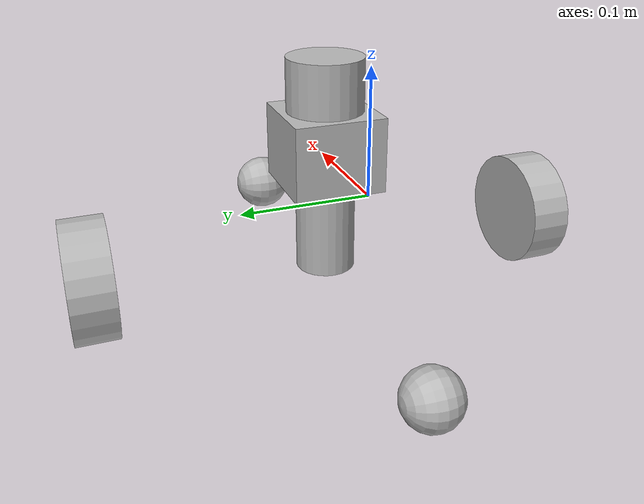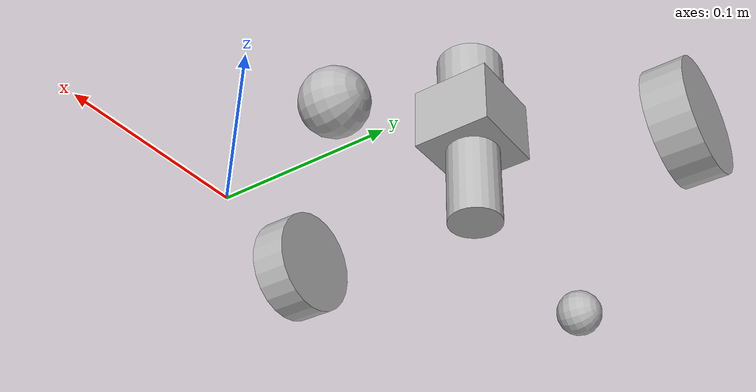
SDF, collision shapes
<?xml version="1.0" ?>
<sdf version="1.5">
 <model name='create2'>
      <link name='base'>
        <inertial>
          <pose frame=''>0.001453 -0.000453 0.029787 0 -0 0</pose>
          <inertia>
            <ixx>0.05864</ixx>
            <ixy>0.000124</ixy>
            <ixz>0.000615</ixz>
            <iyy>0.058786</iyy>
            <iyz>1.4e-05</iyz>
            <izz>1.53244</izz>
          </inertia>
          <mass>2.234</mass>
        </inertial>
        <sensor name='left_cliff_sensor' type='ray'>
          <pose frame=''>0.07 0.14 0.027 0 1.57079 0</pose>
          <ray>
            <scan>
              <horizontal>
                <samples>1</samples>
                <resolution>1</resolution>
                <min_angle>0</min_angle>
                <max_angle>0</max_angle>
              </horizontal>
              <vertical>
                <samples>1</samples>
                <min_angle>0</min_angle>
                <max_angle>0</max_angle>
              </vertical>
            </scan>
            <range>
              <min>0.01</min>
              <max>0.04</max>
              <resolution>0.1</resolution>
            </range>
          </ray>
        </sensor>
        <sensor name='leftfront_cliff_sensor' type='ray'>
          <pose frame=''>0.15 0.04 0.027 0 1.57079 0</pose>
          <ray>
            <scan>
              <horizontal>
                <samples>1</samples>
                <resolution>1</resolution>
                <min_angle>0</min_angle>
                <max_angle>0</max_angle>
              </horizontal>
              <vertical>
                <samples>1</samples>
                <min_angle>0</min_angle>
                <max_angle>0</max_angle>
              </vertical>
            </scan>
            <range>
              <min>0.01</min>
              <max>0.04</max>
              <resolution>0.1</resolution>
            </range>
          </ray>
        </sensor>
        <sensor name='right_cliff_sensor' type='ray'>
          <pose frame=''>0.07 -0.14 0.027 0 1.57079 0</pose>
          <ray>
            <scan>
              <horizontal>
                <samples>1</samples>
                <resolution>1</resolution>
                <min_angle>0</min_angle>
                <max_angle>0</max_angle>
              </horizontal>
              <vertical>
                <samples>1</samples>
                <min_angle>0</min_angle>
                <max_angle>0</max_angle>
              </vertical>
            </scan>
            <range>
              <min>0.01</min>
              <max>0.04</max>
              <resolution>0.1</resolution>
            </range>
          </ray>
        </sensor>
        <sensor name='rightfront_cliff_sensor' type='ray'>
          <pose frame=''>0.15 -0.04 0.027 0 1.57079 0</pose>
          <ray>
            <scan>
              <horizontal>
                <samples>1</samples>
                <resolution>1</resolution>
                <min_angle>0</min_angle>
                <max_angle>0</max_angle>
              </horizontal>
              <vertical>
                <samples>1</samples>
                <min_angle>0</min_angle>
                <max_angle>0</max_angle>
              </vertical>
            </scan>
            <range>
              <min>0.01</min>
              <max>0.04</max>
              <resolution>0.1</resolution>
            </range>
          </ray>
        </sensor>
        <sensor name='wall_sensor' type='ray'>
          <pose frame=''>0.09 -0.12 0.059 0 0 -1</pose>
          <ray>
            <scan>
              <horizontal>
                <samples>1</samples>
                <resolution>1</resolution>
                <min_angle>0</min_angle>
                <max_angle>0</max_angle>
              </horizontal>
              <vertical>
                <samples>1</samples>
                <min_angle>0</min_angle>
                <max_angle>0</max_angle>
              </vertical>
            </scan>
            <range>
              <min>0.016</min>
              <max>0.04</max>
              <resolution>0.1</resolution>
            </range>
          </ray>
        </sensor>
        <self_collide>0</self_collide>
        <enable_wind>0</enable_wind>
        <kinematic>0</kinematic>
        <pose frame=''>0 0 0 0 -0 0</pose>
        <visual name='base_visual'>
          <pose frame=''>0 0 0.0478 0 -0 0</pose>
          <geometry>
            <mesh>
              <uri>model://create/meshes/create_body.dae</uri>
            </mesh>
          </geometry>
          <material>
            <shader type='pixel'/>
            <emissive>0 0 0 1</emissive>
          </material>
          <transparency>0</transparency>
          <cast_shadows>1</cast_shadows>
        </visual>
        <visual name='front_wheel_visual'>
          <pose frame=''>0.13 0 0.017 4.8e-05 1.5707 1.57075</pose>
          <geometry>
            <sphere>
              <radius>0.009</radius>
            </sphere>
          </geometry>
          <material>
            <shader type='pixel'/>
            <emissive>0 0 0 1</emissive>
          </material>
          <transparency>0</transparency>
          <cast_shadows>1</cast_shadows>
        </visual>
        <visual name='rear_wheel_visual'>
          <pose frame=''>-0.13 0 0.017 4.8e-05 1.5707 1.57075</pose>
          <geometry>
            <sphere>
              <radius>0.0075</radius>
            </sphere>
          </geometry>
          <material>
            <shader type='pixel'/>
            <emissive>0 0 0 1</emissive>
          </material>
          <transparency>0</transparency>
          <cast_shadows>1</cast_shadows>
        </visual>
        <collision name='base_collision'>
          <laser_retro>0</laser_retro>
          <max_contacts>10</max_contacts>
          <pose frame=''>0 0 0.0478 0 -0 0</pose>
          <geometry>
            <cylinder>
              <radius>0.016495</radius>
              <length>0.061163</length>
            </cylinder>
          </geometry>
          <surface>
            <friction>
              <ode>
                <mu>1</mu>
                <mu2>1</mu2>
                <fdir1>0 0 0</fdir1>
                <slip1>0</slip1>
                <slip2>0</slip2>
              </ode>
              <torsional>
                <coefficient>1</coefficient>
                <patch_radius>0</patch_radius>
                <surface_radius>0</surface_radius>
                <use_patch_radius>1</use_patch_radius>
                <ode>
                  <slip>0</slip>
                </ode>
              </torsional>
            </friction>
            <bounce>
              <restitution_coefficient>0</restitution_coefficient>
              <threshold>1e+06</threshold>
            </bounce>
            <contact>
              <collide_without_contact>0</collide_without_contact>
              <collide_without_contact_bitmask>1</collide_without_contact_bitmask>
              <collide_bitmask>1</collide_bitmask>
              <ode>
                <soft_cfm>0</soft_cfm>
                <soft_erp>0.2</soft_erp>
                <kp>1e+13</kp>
                <kd>1</kd>
                <max_vel>0.01</max_vel>
                <min_depth>0</min_depth>
              </ode>
              <bullet>
                <split_impulse>1</split_impulse>
                <split_impulse_penetration_threshold>-0.01</split_impulse_penetration_threshold>
                <soft_cfm>0</soft_cfm>
                <soft_erp>0.2</soft_erp>
                <kp>1e+13</kp>
                <kd>1</kd>
              </bullet>
            </contact>
          </surface>
        </collision>
        <collision name='front_wheel_collision'>
          <laser_retro>0</laser_retro>
          <max_contacts>10</max_contacts>
          <pose frame=''>0.13 0 0.017 -0 1.5707 1.5707</pose>
          <geometry>
            <sphere>
              <radius>0.018</radius>
            </sphere>
          </geometry>
          <surface>
            <friction>
              <ode>
                <mu>0</mu>
                <mu2>0</mu2>
                <fdir1>0 0 0</fdir1>
                <slip1>0</slip1>
                <slip2>0</slip2>
              </ode>
              <torsional>
                <coefficient>1</coefficient>
                <patch_radius>0</patch_radius>
                <surface_radius>0</surface_radius>
                <use_patch_radius>1</use_patch_radius>
                <ode>
                  <slip>0</slip>
                </ode>
              </torsional>
            </friction>
            <bounce>
              <restitution_coefficient>0</restitution_coefficient>
              <threshold>1e+06</threshold>
            </bounce>
            <contact>
              <collide_without_contact>0</collide_without_contact>
              <collide_without_contact_bitmask>1</collide_without_contact_bitmask>
              <collide_bitmask>1</collide_bitmask>
              <ode>
                <soft_cfm>0</soft_cfm>
                <soft_erp>0.2</soft_erp>
                <kp>1e+13</kp>
                <kd>1</kd>
                <max_vel>0.01</max_vel>
                <min_depth>0</min_depth>
              </ode>
              <bullet>
                <split_impulse>1</split_impulse>
                <split_impulse_penetration_threshold>-0.01</split_impulse_penetration_threshold>
                <soft_cfm>0</soft_cfm>
                <soft_erp>0.2</soft_erp>
                <kp>1e+13</kp>
                <kd>1</kd>
              </bullet>
            </contact>
          </surface>
        </collision>
        <collision name='rear_wheel_collision'>
          <laser_retro>0</laser_retro>
          <max_contacts>10</max_contacts>
          <pose frame=''>-0.13 0 0.017 -0 1.5707 1.5707</pose>
          <geometry>
            <sphere>
              <radius>0.015</radius>
            </sphere>
          </geometry>
          <surface>
            <friction>
              <ode>
                <mu>0</mu>
                <mu2>0</mu2>
                <fdir1>0 0 0</fdir1>
                <slip1>0</slip1>
                <slip2>0</slip2>
              </ode>
              <torsional>
                <coefficient>1</coefficient>
                <patch_radius>0</patch_radius>
                <surface_radius>0</surface_radius>
                <use_patch_radius>1</use_patch_radius>
                <ode>
                  <slip>0</slip>
                </ode>
              </torsional>
            </friction>
            <bounce>
              <restitution_coefficient>0</restitution_coefficient>
              <threshold>1e+06</threshold>
            </bounce>
            <contact>
              <collide_without_contact>0</collide_without_contact>
              <collide_without_contact_bitmask>1</collide_without_contact_bitmask>
              <collide_bitmask>1</collide_bitmask>
              <ode>
                <soft_cfm>0</soft_cfm>
                <soft_erp>0.2</soft_erp>
                <kp>1e+13</kp>
                <kd>1</kd>
                <max_vel>0.01</max_vel>
                <min_depth>0</min_depth>
              </ode>
              <bullet>
                <split_impulse>1</split_impulse>
                <split_impulse_penetration_threshold>-0.01</split_impulse_penetration_threshold>
                <soft_cfm>0</soft_cfm>
                <soft_erp>0.2</soft_erp>
                <kp>1e+13</kp>
                <kd>1</kd>
              </bullet>
            </contact>
          </surface>
        </collision>
      </link>
      <link name='left_wheel'>
        <pose frame=''>0 0.13 0.032 0 -0 0</pose>
        <inertial>
          <inertia>
            <ixx>0.001</ixx>
            <ixy>0</ixy>
            <ixz>0</ixz>
            <iyy>0.001</iyy>
            <iyz>0</iyz>
            <izz>0.001</izz>
          </inertia>
          <mass>0.01</mass>
          <pose frame=''>0 0 0 0 -0 0</pose>
        </inertial>
        <self_collide>0</self_collide>
        <enable_wind>0</enable_wind>
        <kinematic>0</kinematic>
        <visual name='visual'>
          <pose frame=''>0 0 0 4.8e-05 1.5707 1.57075</pose>
          <geometry>
            <cylinder>
              <radius>0.033</radius>
              <length>0.023</length>
            </cylinder>
          </geometry>
          <material>
            <shader type='pixel'/>
          </material>
          <transparency>0</transparency>
          <cast_shadows>1</cast_shadows>
        </visual>
        <collision name='collision'>
          <laser_retro>0</laser_retro>
          <max_contacts>10</max_contacts>
          <pose frame=''>0 0 0 -0 1.5707 1.5707</pose>
          <geometry>
            <cylinder>
              <radius>0.033</radius>
              <length>0.023</length>
            </cylinder>
          </geometry>
          <surface>
            <friction>
              <ode>
                <mu>10</mu>
                <mu2>10</mu2>
                <fdir1>0 0 0</fdir1>
                <slip1>0</slip1>
                <slip2>0</slip2>
              </ode>
              <torsional>
                <coefficient>1</coefficient>
                <patch_radius>0</patch_radius>
                <surface_radius>0</surface_radius>
                <use_patch_radius>1</use_patch_radius>
                <ode>
                  <slip>0</slip>
                </ode>
              </torsional>
            </friction>
            <bounce>
              <restitution_coefficient>0</restitution_coefficient>
              <threshold>1e+06</threshold>
            </bounce>
            <contact>
              <collide_without_contact>0</collide_without_contact>
              <collide_without_contact_bitmask>1</collide_without_contact_bitmask>
              <collide_bitmask>1</collide_bitmask>
              <ode>
                <soft_cfm>0</soft_cfm>
                <soft_erp>0.2</soft_erp>
                <kp>1e+13</kp>
                <kd>1</kd>
                <max_vel>0.01</max_vel>
                <min_depth>0</min_depth>
              </ode>
              <bullet>
                <split_impulse>1</split_impulse>
                <split_impulse_penetration_threshold>-0.01</split_impulse_penetration_threshold>
                <soft_cfm>0</soft_cfm>
                <soft_erp>0.2</soft_erp>
                <kp>1e+13</kp>
                <kd>1</kd>
              </bullet>
            </contact>
          </surface>
        </collision>
      </link>
      <link name='right_wheel'>
        <pose frame=''>-0 -0.13 0.032 0 -0 0</pose>
        <inertial>
          <inertia>
            <ixx>0.001</ixx>
            <ixy>0</ixy>
            <ixz>0</ixz>
            <iyy>0.001</iyy>
            <iyz>0</iyz>
            <izz>0.001</izz>
          </inertia>
          <mass>0.01</mass>
          <pose frame=''>0 0 0 0 -0 0</pose>
        </inertial>
        <self_collide>0</self_collide>
        <enable_wind>0</enable_wind>
        <kinematic>0</kinematic>
        <visual name='visual'>
          <pose frame=''>0 0 0 4.8e-05 1.5707 1.57075</pose>
          <geometry>
            <cylinder>
              <radius>0.033</radius>
              <length>0.023</length>
            </cylinder>
          </geometry>
          <material>
            <shader type='pixel'/>
          </material>
          <transparency>0</transparency>
          <cast_shadows>1</cast_shadows>
        </visual>
        <collision name='collision'>
          <laser_retro>0</laser_retro>
          <max_contacts>10</max_contacts>
          <pose frame=''>0 0 0 -0 1.5707 1.5707</pose>
          <geometry>
            <cylinder>
              <radius>0.033</radius>
              <length>0.023</length>
            </cylinder>
          </geometry>
          <surface>
            <friction>
              <ode>
                <mu>10</mu>
                <mu2>10</mu2>
                <fdir1>0 0 0</fdir1>
                <slip1>0</slip1>
                <slip2>0</slip2>
              </ode>
              <torsional>
                <coefficient>1</coefficient>
                <patch_radius>0</patch_radius>
                <surface_radius>0</surface_radius>
                <use_patch_radius>1</use_patch_radius>
                <ode>
                  <slip>0</slip>
                </ode>
              </torsional>
            </friction>
            <bounce>
              <restitution_coefficient>0</restitution_coefficient>
              <threshold>1e+06</threshold>
            </bounce>
            <contact>
              <collide_without_contact>0</collide_without_contact>
              <collide_without_contact_bitmask>1</collide_without_contact_bitmask>
              <collide_bitmask>1</collide_bitmask>
              <ode>
                <soft_cfm>0</soft_cfm>
                <soft_erp>0.2</soft_erp>
                <kp>1e+13</kp>
                <kd>1</kd>
                <max_vel>0.01</max_vel>
                <min_depth>0</min_depth>
              </ode>
              <bullet>
                <split_impulse>1</split_impulse>
                <split_impulse_penetration_threshold>-0.01</split_impulse_penetration_threshold>
                <soft_cfm>0</soft_cfm>
                <soft_erp>0.2</soft_erp>
                <kp>1e+13</kp>
                <kd>1</kd>
              </bullet>
            </contact>
          </surface>
        </collision>
      </link>
      <link name='hokuyo'>
        <pose frame=''>3.1e-05 -5e-06 0.102553 0 -0 0</pose>
        <inertial>
          <mass>0.1</mass>
          <pose frame=''>0 0 0 0 -0 0</pose>
          <inertia>
            <ixx>1</ixx>
            <ixy>0</ixy>
            <ixz>0</ixz>
            <iyy>1</iyy>
            <iyz>0</iyz>
            <izz>1</izz>
          </inertia>
        </inertial>
        <visual name='visual'>
          <geometry>
            <mesh>
              <uri>model://hokuyo/meshes/hokuyo.dae</uri>
            </mesh>
          </geometry>
        </visual>
        <collision name='collision-base'>
          <pose frame=''>0 0 -0.0145 0 -0 0</pose>
          <geometry>
            <box>
              <size>0.05 0.05 0.041</size>
            </box>
          </geometry>
          <max_contacts>10</max_contacts>
          <surface>
            <contact>
              <ode/>
            </contact>
            <bounce/>
            <friction>
              <torsional>
                <ode/>
              </torsional>
              <ode/>
            </friction>
          </surface>
        </collision>
        <collision name='collision-top'>
          <pose frame=''>0 0 0.0205 0 -0 0</pose>
          <geometry>
            <cylinder>
              <radius>0.021</radius>
              <length>0.029</length>
            </cylinder>
          </geometry>
          <max_contacts>10</max_contacts>
          <surface>
            <contact>
              <ode/>
            </contact>
            <bounce/>
            <friction>
              <torsional>
                <ode/>
              </torsional>
              <ode/>
            </friction>
          </surface>
        </collision>
        <sensor name='laser' type='ray'>
          <pose frame=''>0.01 0 0.0175 0 -0 0</pose>
          <ray>
            <scan>
              <horizontal>
                <samples>640</samples>
                <resolution>1</resolution>
                <min_angle>-2.26889</min_angle>
                <max_angle>2.2689</max_angle>
              </horizontal>
              <vertical>
                <samples>1</samples>
                <min_angle>0</min_angle>
                <max_angle>0</max_angle>
              </vertical>
            </scan>
            <range>
              <min>0.08</min>
              <max>10</max>
              <resolution>0.01</resolution>
            </range>
          </ray>
          <plugin name='laser' filename='libRayPlugin.so'/>
          <always_on>1</always_on>
          <update_rate>30</update_rate>
          <visualize>1</visualize>
        </sensor>
        <self_collide>0</self_collide>
        <enable_wind>0</enable_wind>
        <kinematic>0</kinematic>
      </link>
      <joint name='base_hokuyo_joint' type='fixed'>
        <parent>base</parent>
        <child>hokuyo</child>
        <pose frame=''>0 0 0 0 -0 0</pose>
        <physics>
          <ode>
            <limit>
              <cfm>0</cfm>
              <erp>0.2</erp>
            </limit>
            <suspension>
              <cfm>0</cfm>
              <erp>0.2</erp>
            </suspension>
          </ode>
        </physics>
      </joint>
      <joint name='left_wheel' type='revolute'>
        <parent>base</parent>
        <child>left_wheel</child>
        <pose frame=''>0 0 0 0 -0 0</pose>
        <axis>
          <xyz>0 1 0</xyz>
          <use_parent_model_frame>1</use_parent_model_frame>
          <limit>
            <lower>-1e+16</lower>
            <upper>1e+16</upper>
            <effort>-1</effort>
            <velocity>-1</velocity>
          </limit>
          <dynamics>
            <spring_reference>0</spring_reference>
            <spring_stiffness>0</spring_stiffness>
            <damping>0</damping>
            <friction>0</friction>
          </dynamics>
        </axis>
        <physics>
          <ode>
            <limit>
              <cfm>0</cfm>
              <erp>0.2</erp>
            </limit>
            <suspension>
              <cfm>0</cfm>
              <erp>0.2</erp>
            </suspension>
          </ode>
        </physics>
      </joint>
      <joint name='right_wheel' type='revolute'>
        <parent>base</parent>
        <child>right_wheel</child>
        <pose frame=''>0 0 0 0 -0 0</pose>
        <axis>
          <xyz>0 1 0</xyz>
          <use_parent_model_frame>1</use_parent_model_frame>
          <limit>
            <lower>-1e+16</lower>
            <upper>1e+16</upper>
            <effort>-1</effort>
            <velocity>-1</velocity>
          </limit>
          <dynamics>
            <spring_reference>0</spring_reference>
            <spring_stiffness>0</spring_stiffness>
            <damping>0</damping>
            <friction>0</friction>
          </dynamics>
        </axis>
        <physics>
          <ode>
            <limit>
              <cfm>0</cfm>
              <erp>0.2</erp>
            </limit>
            <suspension>
              <cfm>0</cfm>
              <erp>0.2</erp>
            </suspension>
          </ode>
        </physics>
      </joint>
      <static>0</static>
      <allow_auto_disable>1</allow_auto_disable>
      <pose frame=''>-0.117796 0.079456 0.001551 -7.4e-05 -0.000481 -1.8e-05</pose>
    </model>

</sdf>
